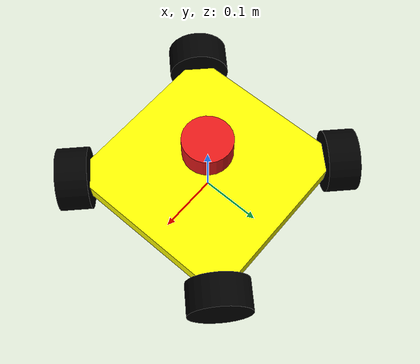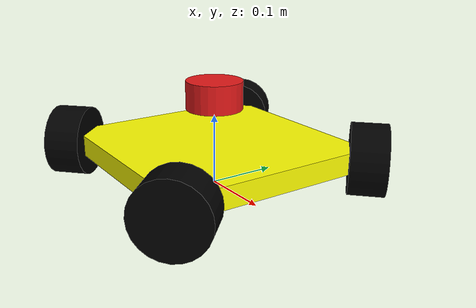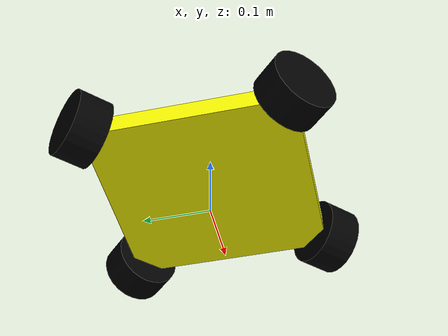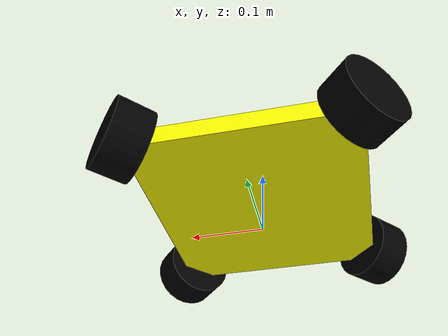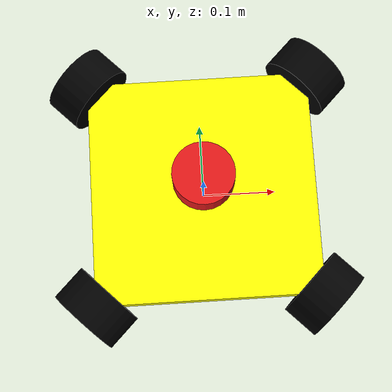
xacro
<?xml version="1.0"?>
<robot name="mm_omni_base" xmlns:xacro="http://www.ros.org/wiki/xacro">

  <!-- 材料定义 -->
  <material name="yellow">
    <color rgba="1 1 0 1"/>
  </material>
  <material name="black">
    <color rgba="0 0 0 1"/>
  </material>
  <material name="red">
    <color rgba="0.9 0.1 0.1 1.0"/>
  </material>

  <!-- 底盘参数 - 整车投影约 400mm x 400mm -->
  <xacro:property name="body_length" value="0.30"/>
  <xacro:property name="body_width" value="0.30"/>
  <xacro:property name="body_height" value="0.03"/>

  <!-- 轮子参数 -->
  <xacro:property name="wheel_radius" value="0.05"/>
  <xacro:property name="wheel_length" value="0.05"/>
  <xacro:property name="wheel_offset_x" value="0.15"/>
  <xacro:property name="wheel_offset_y" value="0.15"/>

  <!-- base_link作为根链接 -->
  <link name="base_link">
    <visual>
      <geometry>
        <box size="${body_length} ${body_width} ${body_height}"/>
      </geometry>
      <material name="yellow"/>
    </visual>
    <collision>
      <geometry>
        <box size="${body_length} ${body_width} ${body_height}"/>
      </geometry>
    </collision>
    <inertial>
      <mass value="5.0"/>
      <inertia ixx="0.08" iyy="0.08" izz="0.08" ixy="0.0" ixz="0.0" iyz="0.0"/>
    </inertial>
  </link>

  <!-- base_footprint用于TF发布 -->
  <link name="base_footprint"/>

  <joint name="base_footprint_joint" type="fixed">
    <parent link="base_footprint"/>
    <child link="base_link"/>
    <origin xyz="0 0 ${wheel_radius}" rpy="0 0 0"/>
  </joint>

  <!-- 激光雷达链接 -->
  <link name="laser_link">
    <visual>
      <geometry>
        <cylinder radius="0.04" length="0.04"/>
      </geometry>
      <material name="red"/>
    </visual>
    <collision>
      <geometry>
        <cylinder radius="0.04" length="0.04"/>
      </geometry>
    </collision>
    <inertial>
      <mass value="0.2"/>
      <inertia ixx="0.0002" iyy="0.0002" izz="0.0002" ixy="0.0" ixz="0.0" iyz="0.0"/>
    </inertial>
  </link>

  <!-- 雷达安装在底盘上方 -->
  <joint name="laser_joint" type="fixed">
    <parent link="base_link"/>
    <child link="laser_link"/>
    <origin xyz="0.0 0.0 0.08" rpy="0 0 0"/>
  </joint>

  <!-- 四个全向轮 -->
  <!-- 轮子1: 前右 -->
  <link name="wheel_link1">
    <visual>
      <geometry>
        <cylinder radius="${wheel_radius}" length="${wheel_length}"/>
      </geometry>
      <material name="black"/>
    </visual>
    <collision>
      <geometry>
        <cylinder radius="${wheel_radius}" length="${wheel_length}"/>
      </geometry>
    </collision>
    <inertial>
      <mass value="0.5"/>
      <inertia ixx="0.001" iyy="0.001" izz="0.001" ixy="0.0" ixz="0.0" iyz="0.0"/>
    </inertial>
  </link>

  <joint name="joint_wheel1" type="continuous">
    <origin xyz="${wheel_offset_x} ${wheel_offset_y} 0" rpy="1.5708 0 -0.7854"/>
    <parent link="base_link"/>
    <child link="wheel_link1"/>
    <axis xyz="0 0 1"/>
  </joint>

  <!-- 轮子2: 前左 -->
  <link name="wheel_link2">
    <visual>
      <geometry>
        <cylinder radius="${wheel_radius}" length="${wheel_length}"/>
      </geometry>
      <material name="black"/>
    </visual>
    <collision>
      <geometry>
        <cylinder radius="${wheel_radius}" length="${wheel_length}"/>
      </geometry>
    </collision>
    <inertial>
      <mass value="0.5"/>
      <inertia ixx="0.001" iyy="0.001" izz="0.001" ixy="0.0" ixz="0.0" iyz="0.0"/>
    </inertial>
  </link>

  <joint name="joint_wheel2" type="continuous">
    <origin xyz="${wheel_offset_x} -${wheel_offset_y} 0" rpy="1.5708 0 0.7854"/>
    <parent link="base_link"/>
    <child link="wheel_link2"/>
    <axis xyz="0 0 1"/>
  </joint>

  <!-- 轮子3: 后左 -->
  <link name="wheel_link3">
    <visual>
      <geometry>
        <cylinder radius="${wheel_radius}" length="${wheel_length}"/>
      </geometry>
      <material name="black"/>
    </visual>
    <collision>
      <geometry>
        <cylinder radius="${wheel_radius}" length="${wheel_length}"/>
      </geometry>
    </collision>
    <inertial>
      <mass value="0.5"/>
      <inertia ixx="0.001" iyy="0.001" izz="0.001" ixy="0.0" ixz="0.0" iyz="0.0"/>
    </inertial>
  </link>

  <joint name="joint_wheel3" type="continuous">
    <origin xyz="-${wheel_offset_x} -${wheel_offset_y} 0" rpy="1.5708 0 -0.7854"/>
    <parent link="base_link"/>
    <child link="wheel_link3"/>
    <axis xyz="0 0 1"/>
  </joint>

  <!-- 轮子4: 后右 -->
  <link name="wheel_link4">
    <visual>
      <geometry>
        <cylinder radius="${wheel_radius}" length="${wheel_length}"/>
      </geometry>
      <material name="black"/>
    </visual>
    <collision>
      <geometry>
        <cylinder radius="${wheel_radius}" length="${wheel_length}"/>
      </geometry>
    </collision>
    <inertial>
      <mass value="0.5"/>
      <inertia ixx="0.001" iyy="0.001" izz="0.001" ixy="0.0" ixz="0.0" iyz="0.0"/>
    </inertial>
  </link>

  <joint name="joint_wheel4" type="continuous">
    <origin xyz="-${wheel_offset_x} ${wheel_offset_y} 0" rpy="1.5708 0 0.7854"/>
    <parent link="base_link"/>
    <child link="wheel_link4"/>
    <axis xyz="0 0 1"/>
  </joint>

  <!-- Gazebo材质设置 -->
  <gazebo reference="base_link">
    <material>Gazebo/Yellow</material>
  </gazebo>
  <gazebo reference="wheel_link1">
    <material>Gazebo/DarkGrey</material>
  </gazebo>
  <gazebo reference="wheel_link2">
    <material>Gazebo/DarkGrey</material>
  </gazebo>
  <gazebo reference="wheel_link3">
    <material>Gazebo/DarkGrey</material>
  </gazebo>
  <gazebo reference="wheel_link4">
    <material>Gazebo/DarkGrey</material>
  </gazebo>
  <gazebo reference="laser_link">
    <material>Gazebo/Red</material>
  </gazebo>

  <!-- 激光雷达传感器 -->
  <gazebo reference="laser_link">
    <sensor name="lidar_sensor" type="ray">
      <pose>0 0 0 0 0 0</pose>
      <visualize>true</visualize>
      <update_rate>10</update_rate>
      <ray>
        <scan>
          <horizontal>
            <samples>1200</samples>
            <resolution>1</resolution>
            <min_angle>-2.61799</min_angle>
            <max_angle>2.61799</max_angle>
          </horizontal>
        </scan>
        <range>
          <min>0.12</min>
          <max>25.0</max>
          <resolution>0.01</resolution>
        </range>
        <noise>
          <type>gaussian</type>
          <mean>0.0</mean>
          <stddev>0.01</stddev>
        </noise>
      </ray>
      <plugin name="laser_plugin" filename="libgazebo_ros_ray_sensor.so">
        <ros>
          <remapping>~/out:=scan</remapping>
        </ros>
        <output_type>sensor_msgs/LaserScan</output_type>
        <frame_name>laser_link</frame_name>
      </plugin>
    </sensor>
  </gazebo>

  <!-- planar_move控制器 -->
  <gazebo>
    <plugin name="object_controller" filename="libgazebo_ros_planar_move.so">
      <commandTopic>cmd_vel</commandTopic>
      <odometryTopic>odom</odometryTopic>
      <odometryFrame>odom</odometryFrame>
      <odometryRate>50.0</odometryRate>
      <robotBaseFrame>base_footprint</robotBaseFrame>
      <publishTF>true</publishTF>
    </plugin>
  </gazebo>
</robot>
